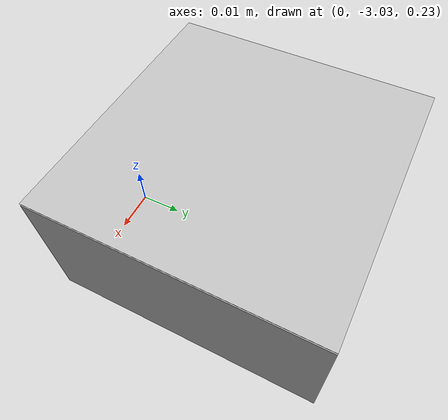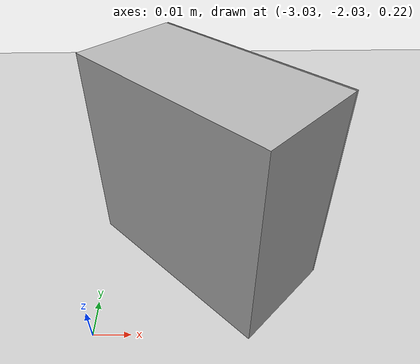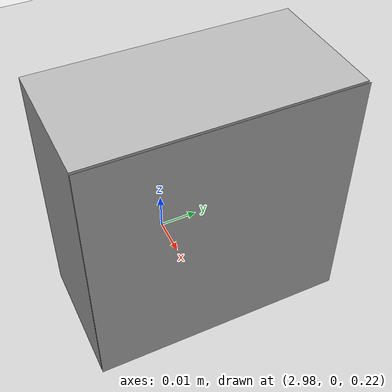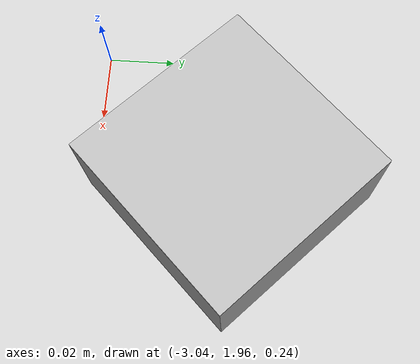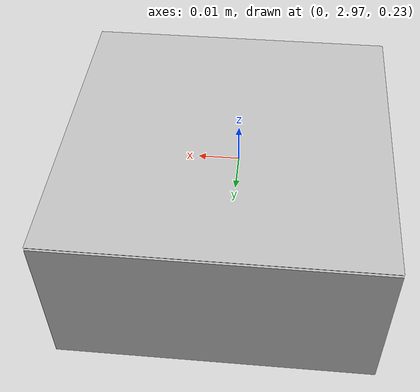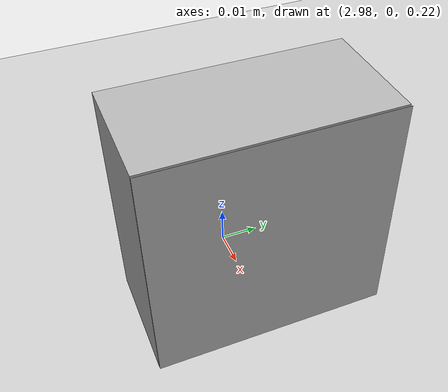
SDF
<sdf version='1.10'>
  <world name='empty'>
    <physics name='1ms' type='ignored'>
      <max_step_size>0.001</max_step_size>
      <real_time_factor>1</real_time_factor>
      <real_time_update_rate>1000</real_time_update_rate>
    </physics>
    <plugin name='gz::sim::systems::Physics' filename='gz-sim-physics-system'/>
    <plugin name='gz::sim::systems::UserCommands' filename='gz-sim-user-commands-system'/>
    <plugin name='gz::sim::systems::SceneBroadcaster' filename='gz-sim-scene-broadcaster-system'/>
    <plugin name='gz::sim::systems::Contact' filename='gz-sim-contact-system'/>
    <plugin name='gz::sim::systems::Sensors' filename='gz-sim-sensors-system'/>
    <plugin name='gz::sim::systems::Imu' filename='gz-sim-imu-system'/>
    <gravity>0 0 -9.8000000000000007</gravity>
    <magnetic_field>5.5644999999999998e-06 2.2875799999999999e-05 -4.2388400000000002e-05</magnetic_field>
    <atmosphere type='adiabatic'/>
    <scene>
      <ambient>0.400000006 0.400000006 0.400000006 1</ambient>
      <background>0.699999988 0.699999988 0.699999988 1</background>
      <shadows>true</shadows>
    </scene>
    <model name='ground_plane'>
      <static>true</static>
      <link name='link'>
        <collision name='collision'>
          <geometry>
            <plane>
              <normal>0 0 1</normal>
              <size>100 100</size>
            </plane>
          </geometry>
          <surface>
            <friction>
              <ode/>
            </friction>
            <bounce/>
            <contact/>
          </surface>
        </collision>
        <visual name='visual'>
          <geometry>
            <plane>
              <normal>0 0 1</normal>
              <size>100 100</size>
            </plane>
          </geometry>
          <material>
            <ambient>0.800000012 0.800000012 0.800000012 1</ambient>
            <diffuse>0.800000012 0.800000012 0.800000012 1</diffuse>
            <specular>0.800000012 0.800000012 0.800000012 1</specular>
          </material>
        </visual>
        <pose>0 0 0 0 0 0</pose>
        <inertial>
          <pose>0 0 0 0 0 0</pose>
          <mass>1</mass>
          <inertia>
            <ixx>1</ixx>
            <ixy>0</ixy>
            <ixz>0</ixz>
            <iyy>1</iyy>
            <iyz>0</iyz>
            <izz>1</izz>
          </inertia>
        </inertial>
        <enable_wind>false</enable_wind>
      </link>
      <pose>0 0 0 0 0 0</pose>
      <self_collide>false</self_collide>
    </model>
    <include>
      <uri>file:///home/rubin/exp_robot_ws/src/aruco_marker_robot/gazebo_models/aruco_box</uri>
      <name>aruco_box</name>
      <pose>3 0 0.25 0 1.5706999999997038 0</pose>
    </include>
    <include>
      <uri>file:///home/rubin/exp_robot_ws/src/aruco_marker_robot/gazebo_models/aruco_box</uri>
      <name>aruco_box_0</name>
      <pose>0 -3 0.25 0 0 0</pose>
    </include>
    <include>
      <uri>file:///home/rubin/exp_robot_ws/src/aruco_marker_robot/gazebo_models/aruco_box</uri>
      <name>aruco_box_1</name>
      <pose>0 3 0.25 0 0 0</pose>
    </include>
    <include>
      <uri>file:///home/rubin/exp_robot_ws/src/aruco_marker_robot/gazebo_models/aruco_box</uri>
      <name>aruco_box_2</name>
      <pose>-3 2 0.25 0 0 -0.7854000000000001</pose>
    </include>
    <include>
      <uri>file:///home/rubin/exp_robot_ws/src/aruco_marker_robot/gazebo_models/aruco_box</uri>
      <name>aruco_box_3</name>
      <pose>-3 -1.9999999999999996 0.25000000000000006 -2.8813972202753372e-12 1.5706999999997038 0.78539999999723575</pose>
    </include>
    <light name='sun' type='directional'>
      <pose>0 0 10 0 0 0</pose>
      <cast_shadows>true</cast_shadows>
      <intensity>1</intensity>
      <direction>-0.5 0.10000000000000001 -0.90000000000000002</direction>
      <diffuse>0.800000012 0.800000012 0.800000012 1</diffuse>
      <specular>0.200000003 0.200000003 0.200000003 1</specular>
      <attenuation>
        <range>1000</range>
        <linear>0.01</linear>
        <constant>0.90000000000000002</constant>
        <quadratic>0.001</quadratic>
      </attenuation>
      <spot>
        <inner_angle>0</inner_angle>
        <outer_angle>0</outer_angle>
        <falloff>0</falloff>
      </spot>
    </light>
  </world>
</sdf>

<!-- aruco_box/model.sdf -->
<sdf version="1.6">
  <model name="aruco_box">
    <static>false</static>

    <link name="link">
      <inertial>
        <mass>0.05</mass>
        <inertia>
          <ixx>1e-5</ixx><iyy>1e-5</iyy><izz>1e-5</izz>
          <ixy>0</ixy><ixz>0</ixz><iyz>0</iyz>
        </inertia>
      </inertial>

      <collision name="box_col">
        <geometry>
          <box><size>0.06 0.06 0.03</size></box>
        </geometry>
      </collision>

      <visual name="box_vis">
        <geometry>
          <box><size>0.06 0.06 0.03</size></box>
        </geometry>
        <material>
          <ambient>0.7 0.7 0.7 1</ambient>
          <diffuse>0.7 0.7 0.7 1</diffuse>
        </material>
      </visual>

      <!-- Top marker plane -->
      <visual name="marker_plane">
        <!-- box half height = 0.015, lift slightly to avoid z-fighting -->
        <pose>0 0 0.0156 0 0 0</pose>
        <geometry>
          <plane>
            <normal>0 0 1</normal>
            <size>0.06 0.06</size>
          </plane>
        </geometry>
        <material>
          <script>
            <uri>model://aruco_box/materials/scripts</uri>
            <uri>model://aruco_box/materials/textures</uri>
            <name>ArucoBox/Marker</name>
          </script>
        </material>
      </visual>

    </link>
  </model>
</sdf>
